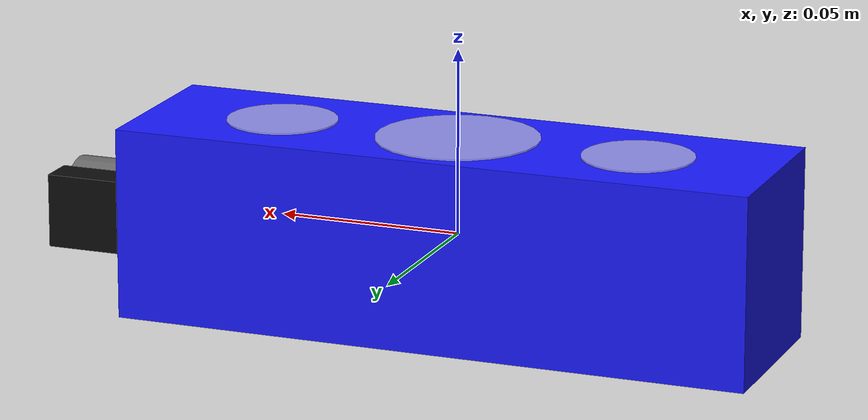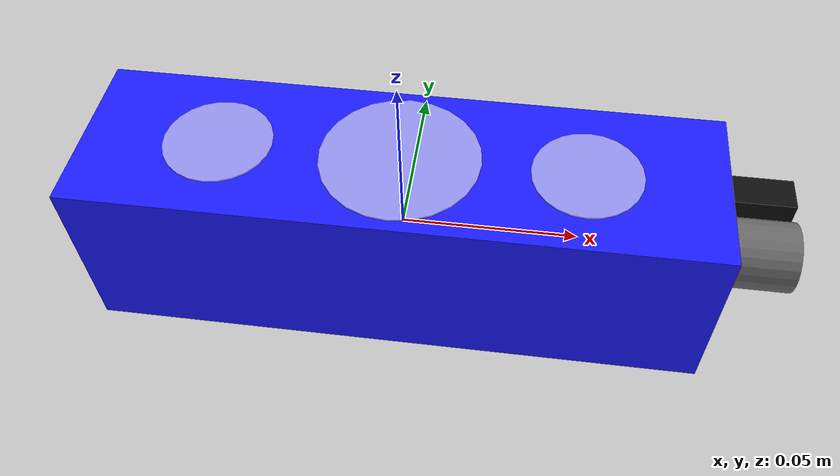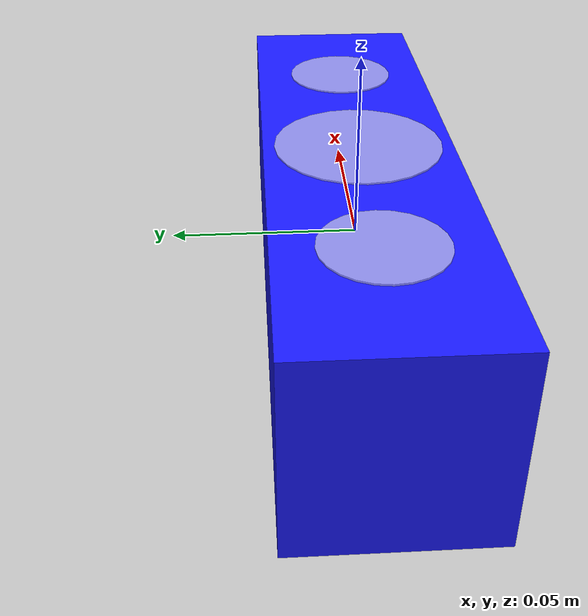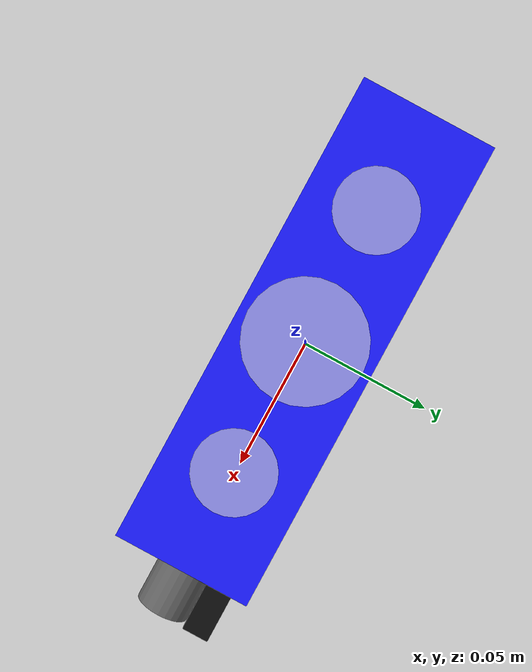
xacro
<?xml version="1.0"?>
<robot xmlns:xacro="http://www.ros.org/wiki/xacro"
       name="ensenso_nx">

    <!-- Colors -->
    <material name="Ensenso/Blue">
        <color rgba="0.1 0.1 1.0 0.9"/>
    </material>
    <material name="Ensenso/Grey">
        <color rgba="0.4 0.4 0.4 0.9"/>
    </material>
    <material name="Ensenso/Black">
        <color rgba="0.05 0.05 0.05 0.9"/>
    </material>
    <material name="Ensenso/White">
        <color rgba="0.9 0.9 0.9 0.6"/>
    </material>

    <!-- Set origin link -->
    <link name="world" />

    <!-- The bounding box of the Ensenso N35 camera -->
    <joint name="world_ensenso_camera" type="fixed">
        <parent link="world" />
        <child link="ensenso_camera" />
    </joint>
    <link name="ensenso_camera">
        <visual>
            <origin xyz="0 0 0" rpy="0 0 0"/>
            <geometry>
                <box size="0.175 0.050 0.052"/>
            </geometry>
            <material name="Ensenso/Blue"/>
        </visual>
        <collision>
            <origin xyz="0 0 0" rpy="0 0 0"/>
            <geometry>
                <box size="0.175 0.050 0.052"/>
            </geometry>
        </collision>
    </link>

    <!-- GPIO connector: -->
    <joint name="$ensenso_camera_gpio" type="fixed" >
        <parent link="ensenso_camera"/>
        <child link="gpio"/>
        <origin xyz="0.1 0.0 0.0" rpy="0.0 1.570796 0.0"/>
    </joint>
    <link name="gpio">
        <visual>
            <origin xyz="0 0 0" rpy="0 0 0"/>
            <geometry>
                <cylinder length="0.02" radius="0.01"/>
            </geometry>
            <material name="Ensenso/Grey"/>
        </visual>
        <collision>
            <origin xyz="0 0 0" rpy="0 0 0"/>
            <geometry>
                <cylinder length="0.02" radius="0.02"/>
            </geometry>
        </collision>
    </link>

    <!-- Ethernet connector: -->
    <joint name="$ensenso_camera_ethernet" type="fixed" >
        <parent link="ensenso_camera"/>
        <child link="ethernet"/>
        <origin xyz="0.1 0.015 0.0" rpy="0 0.0 0.0"/>
    </joint>
    <link name="ethernet">
        <visual>
            <origin xyz="0 0 0" rpy="0 0 0"/>
            <geometry>
                <box size="0.02 0.01 0.02"/>
            </geometry>
            <material name="Ensenso/Black"/>
        </visual>
        <collision>
            <origin xyz="0 0 0" rpy="0 0 0"/>
            <geometry>
                <box size="0.02 0.01 0.02"/>
            </geometry>
        </collision>
    </link>

    <!-- Lens left -->
    <joint name="$ensenso_camera_lens_left" type="fixed" >
        <parent link="ensenso_camera"/>
        <child link="lens_left"/>
        <origin xyz="-0.05 0.0 0.026" rpy="0.0 0.0 0.0"/>
    </joint>
    <link name="lens_left">
        <visual>
            <origin xyz="0 0 0" rpy="0 0 0"/>
            <geometry>
                <cylinder length="0.001" radius="0.015"/>
            </geometry>
            <material name="Ensenso/White"/>
        </visual>
        <collision>
            <origin xyz="0 0 0" rpy="0 0 0"/>
            <geometry>
                <cylinder length="0.001" radius="0.015"/>
            </geometry>
        </collision>
    </link>

    <!-- Lens right -->
    <joint name="$ensenso_camera_lens_right" type="fixed" >
        <parent link="ensenso_camera"/>
        <child link="lens_right"/>
        <origin xyz="0.05 0.0 0.026" rpy="0.0 0.0 0.0"/>
    </joint>
    <link name="lens_right">
        <visual>
            <origin xyz="0 0 0" rpy="0 0 0"/>
            <geometry>
                <cylinder length="0.001" radius="0.015"/>
            </geometry>
            <material name="Ensenso/White"/>
        </visual>
        <collision>
            <origin xyz="0 0 0" rpy="0 0 0"/>
            <geometry>
                <cylinder length="0.001" radius="0.015"/>
            </geometry>
        </collision>
    </link>

    <!-- Emitter -->
    <joint name="$ensenso_camera_emitter" type="fixed" >
        <parent link="ensenso_camera"/>
        <child link="emitter"/>
        <origin xyz="0.0 0.0 0.026" rpy="0.0 0.0 0.0"/>
    </joint>
    <link name="emitter">
        <visual>
            <origin xyz="0 0 0" rpy="0 0 0"/>
            <geometry>
                <cylinder length="0.001" radius="0.022"/>
            </geometry>
            <material name="Ensenso/White"/>
        </visual>
        <collision>
            <origin xyz="0 0 0" rpy="0 0 0"/>
            <geometry>
                <cylinder length="0.001" radius="0.015"/>
            </geometry>
        </collision>
    </link>

</robot>
